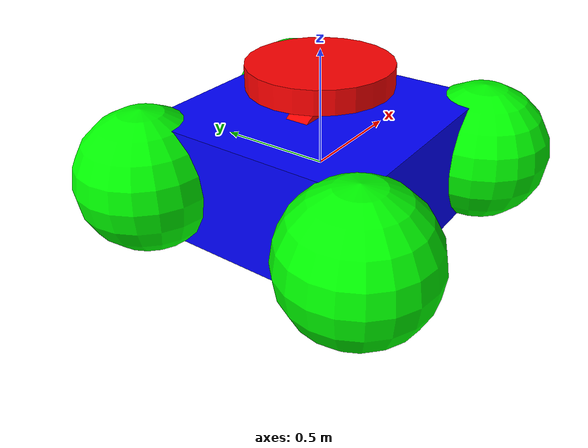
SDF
<sdf version='1.8'>
  <model name="HolonomicRobo">
  <pose>0 0 0 0 0 0</pose>

    <link name="base_footprint"/>

    <link name="base_link">
      <pose>0 0 0 0 0 0</pose>
      <inertial> <!--inertial properties of the link mass, inertia matix-->
          <mass>1.14395</mass>
          <inertia>
              <ixx>0.095329</ixx>
              <ixy>0</ixy>
              <ixz>0</ixz>
              <iyy>0.381317</iyy>
              <iyz>0</iyz>
              <izz>0.476646</izz>
          </inertia>
      </inertial>
      <visual name='visual'>
        <geometry>
            <box>
                <size>1.0 1.0 0.5</size>
            </box>
        </geometry>
        <!--let's add color to our link-->
        <material>
            <ambient>0.0 0.0 1.0 1</ambient>
            <diffuse>0.0 0.0 1.0 1</diffuse>
            <specular>0.0 0.0 1.0 1</specular>
        </material>
      </visual>
    </link>

    <joint name="base_joint" type="fixed">
      <parent>base_footprint</parent>
      <child>base_link</child>
    </joint>

    <link name='caster_back_left_link'>
      <pose>-0.5 0.5 0 0 0 0</pose>
      <inertial>
        <mass>0.001</mass>
        <inertia>
          <ixx>0.00001</ixx>
          <ixy>0.000</ixy>
          <ixz>0.000</ixz>
          <iyy>0.00001</iyy>
          <iyz>0.000</iyz>
          <izz>0.00001</izz>
        </inertia>
      </inertial>
      <visual name='caster_back_left_visual'>
          <geometry>
              <sphere>
                  <radius>0.3</radius>
              </sphere>
          </geometry>
          <material>
              <ambient>0.0 1 0.0 1</ambient>
              <diffuse>0.0 1 0.0 1</diffuse>
              <specular>0.0 1 0.0 1</specular>
          </material>
        </visual>
      <collision name='caster_back_left_collision'>
        <geometry>
          <sphere>
            <radius>0.3</radius>
          </sphere>
        </geometry>
      </collision>
    </link>
    <joint name='caster_back_left_joint' type='ball'>
      <parent>base_link</parent>
      <child>caster_back_left_link</child>
    </joint>

    <link name='caster_back_right_link'>
      <pose>-0.5 -0.5 0 0 0 0</pose>
      <inertial>
        <mass>0.001</mass>
        <inertia>
          <ixx>0.00001</ixx>
          <ixy>0.000</ixy>
          <ixz>0.000</ixz>
          <iyy>0.00001</iyy>
          <iyz>0.000</iyz>
          <izz>0.00001</izz>
        </inertia>
      </inertial>
      <visual name='caster_back_right_visual'>
          <geometry>
              <sphere>
                  <radius>0.3</radius>
              </sphere>
          </geometry>
          <material>
              <ambient>0.0 1 0.0 1</ambient>
              <diffuse>0.0 1 0.0 1</diffuse>
              <specular>0.0 1 0.0 1</specular>
          </material>
        </visual>
      <collision name='caster_back_right_collision'>
        <geometry>
          <sphere>
            <radius>0.3</radius>
          </sphere>
        </geometry>
      </collision>
    </link>
    <joint name='caster_back_right_joint' type='ball'>
      <parent>base_link</parent>
      <child>caster_back_right_link</child>
    </joint>

    <link name='caster_front_left_link'>
      <pose>0.5 0.5 0 0 0 0</pose>
      <inertial>
        <mass>0.001</mass>
        <inertia>
          <ixx>0.00001</ixx>
          <ixy>0.000</ixy>
          <ixz>0.000</ixz>
          <iyy>0.00001</iyy>
          <iyz>0.000</iyz>
          <izz>0.00001</izz>
        </inertia>
      </inertial>
      <visual name='caster_front_left_visual'>
          <geometry>
              <sphere>
                  <radius>0.3</radius>
              </sphere>
          </geometry>
          <material>
              <ambient>0.0 1 0.0 1</ambient>
              <diffuse>0.0 1 0.0 1</diffuse>
              <specular>0.0 1 0.0 1</specular>
          </material>
        </visual>
      <collision name='caster_front_leftcollision'>
        <geometry>
          <sphere>
            <radius>0.3</radius>
          </sphere>
        </geometry>
      </collision>
    </link>
    <joint name='caster_front_left_joint' type='ball'>
      <parent>base_link</parent>
      <child>caster_front_left_link</child>
    </joint>

    <link name='caster_front_right_link'>
      <pose>0.5 -0.5 0 0 0 0</pose>
      <inertial>
        <mass>0.001</mass>
        <inertia>
          <ixx>0.00001</ixx>
          <ixy>0.000</ixy>
          <ixz>0.000</ixz>
          <iyy>0.00001</iyy>
          <iyz>0.000</iyz>
          <izz>0.00001</izz>
        </inertia>
      </inertial>
      <visual name='caster_front_right_visual'>
          <geometry>
              <sphere>
                  <radius>0.3</radius>
              </sphere>
          </geometry>
          <material>
              <ambient>0.0 1 0.0 1</ambient>
              <diffuse>0.0 1 0.0 1</diffuse>
              <specular>0.0 1 0.0 1</specular>
          </material>
        </visual>
      <collision name='caster_front_right_collision'>
        <geometry>
          <sphere>
            <radius>0.3</radius>
          </sphere>
        </geometry>
      </collision>
    </link>
    <joint name='caster_front_right_joint' type='ball'>
      <parent>base_link</parent>
      <child>caster_front_right_link</child>
    </joint>

    <link name="wheel_base_link">
      <pose>0 0 0.4 0 0 0</pose>
      <inertial>
        <inertia>
          <ixx>2.0</ixx>
          <ixy>0</ixy>
          <ixz>0</ixz>
          <iyy>2.0</iyy>
          <iyz>0</iyz>
          <izz>4.0</izz>
        </inertia>
        <mass>1.0</mass>
      </inertial>
      <visual name="wheel_base_visual">
        <geometry>
          <cylinder>
            <radius>0.3</radius>
            <length>0.1</length>
          </cylinder>
          </geometry>
          <material>
            <ambient>1.0 0.0 0.0 1</ambient>
            <diffuse>1.0 0.0 0.0 1</diffuse>
            <specular>1.0 0.0 0.0 1</specular>
          </material>
      </visual>
    </link>
    <joint name="wheel_base_joint" type="revolute">
      <parent>base_link</parent>
      <child>wheel_base_link</child>
      <axis>
        <xyz>0 0 1</xyz>
      </axis>
    </joint>

    <link name="wheel_link">
      <pose>0 0 0 -1.57 0 0</pose>
      <inertial>
        <inertia>
          <ixx>1.0</ixx>
          <ixy>0</ixy>
          <ixz>0</ixz>
          <iyy>1.0</iyy>
          <iyz>0</iyz>
          <izz>2.0</izz>
        </inertia>
        <mass>1.0</mass>
      </inertial>
      <collision name="wheel_collision">
        <geometry>
          <cylinder>
            <radius>0.3</radius>
            <length>0.1</length>
          </cylinder>
        </geometry>
      </collision>
      <visual name="wheel_visual">
        <geometry>
          <cylinder>
            <radius>0.3</radius>
            <length>0.1</length>
          </cylinder>
          </geometry>
          <material>
            <ambient>1.0 0.0 0.0 1</ambient>
            <diffuse>1.0 0.0 0.0 1</diffuse>
            <specular>1.0 0.0 0.0 1</specular>
          </material>
      </visual>
    </link>
    <joint name="wheel_joint" type="revolute">
      <parent>wheel_base_link</parent>
      <child>wheel_link</child>
      <axis>
        <xyz>0 0 1</xyz>
      </axis>
    </joint>

    <!-- Global odometer -->
    <plugin
      filename="ignition-gazebo-odometry-publisher-system"
      name="ignition::gazebo::systems::OdometryPublisher">
      <odom_publish_frequency>50</odom_publish_frequency>
      <odom_topic>/odom</odom_topic>
      <odom_frame>odom</odom_frame>
      <robot_base_frame>base_footprint</robot_base_frame>
      <tf_topic>/odom/tf</tf_topic>
    </plugin>

    <!-- Joint state publisher -->
    <plugin filename="libignition-gazebo-joint-state-publisher-system.so"
      name="ignition::gazebo::systems::JointStatePublisher">
      <topic>joint_states</topic>
    </plugin>

    <plugin filename="libHolonomicTest.so" name="model_test::HolonomicTest">
      <wheel_joint>wheel_joint</wheel_joint>
      <base_joint>wheel_base_joint</base_joint>
    </plugin>

  </model>
</sdf>
